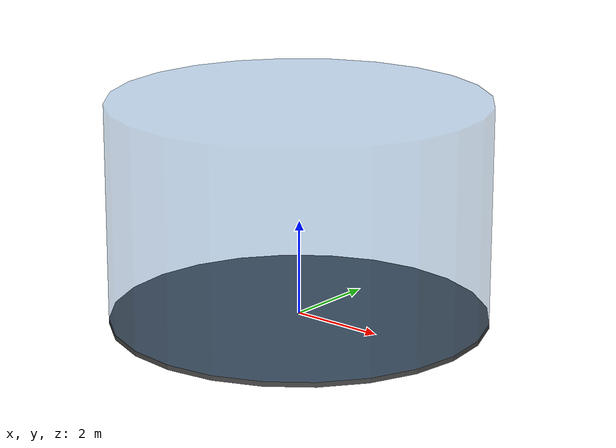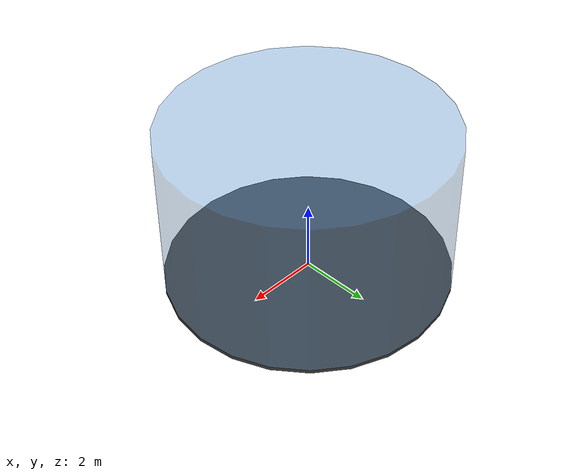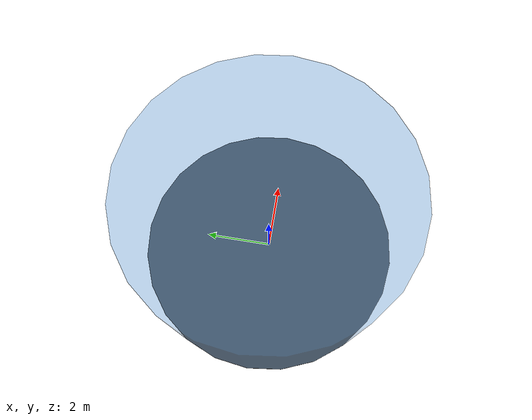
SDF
<?xml version="1.0" ?>
<sdf version="1.7">
  <world name="water_tank">

    <!-- Manually defined sunlight (fix for model://sun not found) -->
    <light name="sun" type="directional">
      <cast_shadows>true</cast_shadows>
      <pose>0 0 10 0 0 0</pose>
      <diffuse>1 1 1 1</diffuse>
      <specular>0.1 0.1 0.1 1</specular>
      <attenuation>
        <range>1000</range>
        <constant>0.9</constant>
        <linear>0.01</linear>
        <quadratic>0.001</quadratic>
      </attenuation>
      <direction>-0.5 0.5 -1</direction>
    </light>

    <!-- Tank floor (26ft diameter = 7.9248m) -->
    <model name="tank_floor">
      <static>true</static>
      <link name="floor_link">
        <collision name="collision">
          <geometry>
            <cylinder>
              <radius>3.9624</radius>
              <length>0.1</length>
            </cylinder>
          </geometry>
        </collision>
        <visual name="visual">
          <geometry>
            <cylinder>
              <radius>3.9624</radius>
              <length>0.1</length>
            </cylinder>
          </geometry>
          <material>
            <ambient>0.1 0.1 0.1 1</ambient>
            <diffuse>0.3 0.3 0.3 1</diffuse>
          </material>
        </visual>
        <pose>0 0 -0.05 0 0 0</pose>
      </link>
    </model>

    <!-- Transparent cylindrical tank walls -->
    <model name="cylinder_tank">
      <static>true</static>
      <link name="tank_link">
        <collision name="collision">
          <geometry>
            <cylinder>
              <radius>3.9624</radius>
              <length>4.572</length> <!-- 15 feet deep -->
            </cylinder>
          </geometry>
        </collision>
        <visual name="visual">
          <geometry>
            <cylinder>
              <radius>3.9624</radius>
              <length>4.572</length>
            </cylinder>
          </geometry>
          <material>
            <ambient>0.0 0.2 0.5 0.3</ambient>
            <diffuse>0.1 0.4 0.7 0.3</diffuse>
          </material>
        </visual>
        <pose>0 0 2.286 0 0 0</pose> <!-- Raise to center visually -->
      </link>
    </model>

    <!-- Fog for underwater murkiness -->
    <scene>
      <ambient>0.05 0.1 0.3 1</ambient>
      <fog>
        <type>linear</type>
        <color>0.0 0.1 0.3 1</color>
        <start>0.1</start>
        <end>10</end>
      </fog>
    </scene>

  </world>
</sdf>
